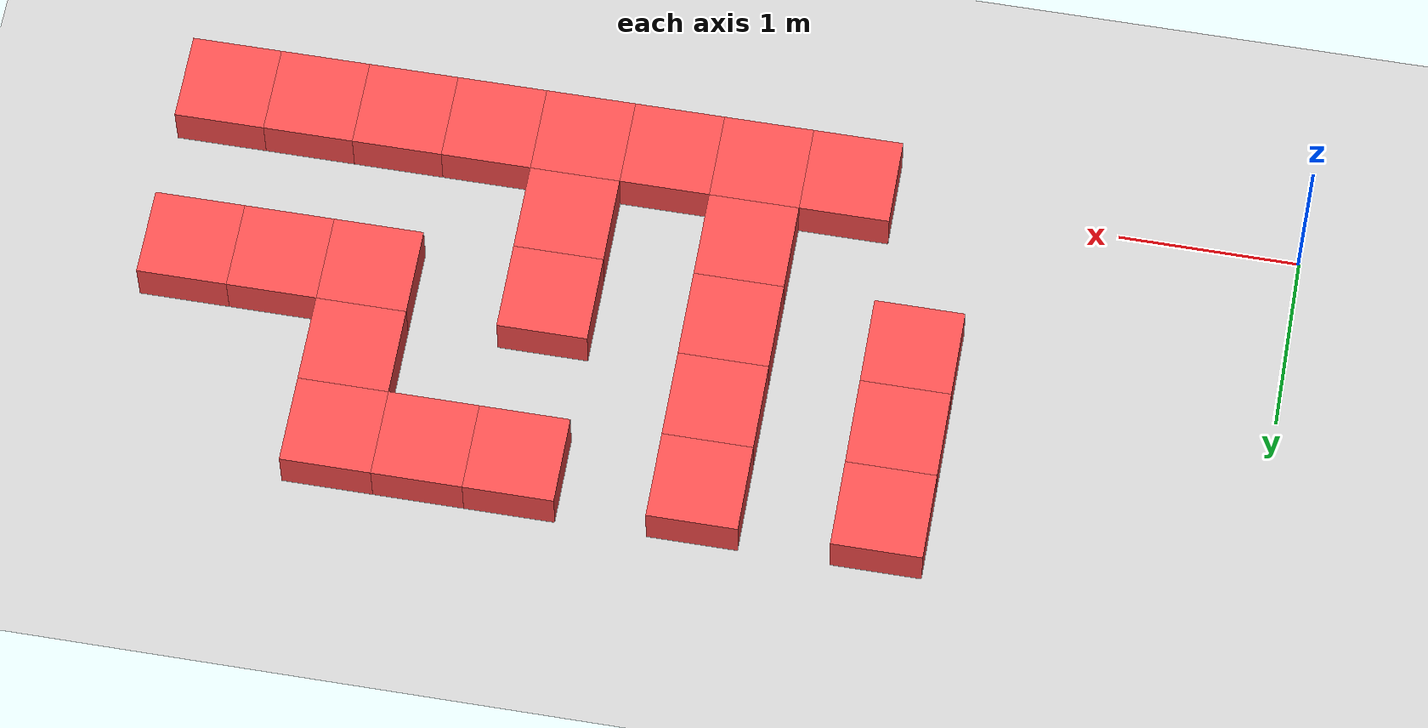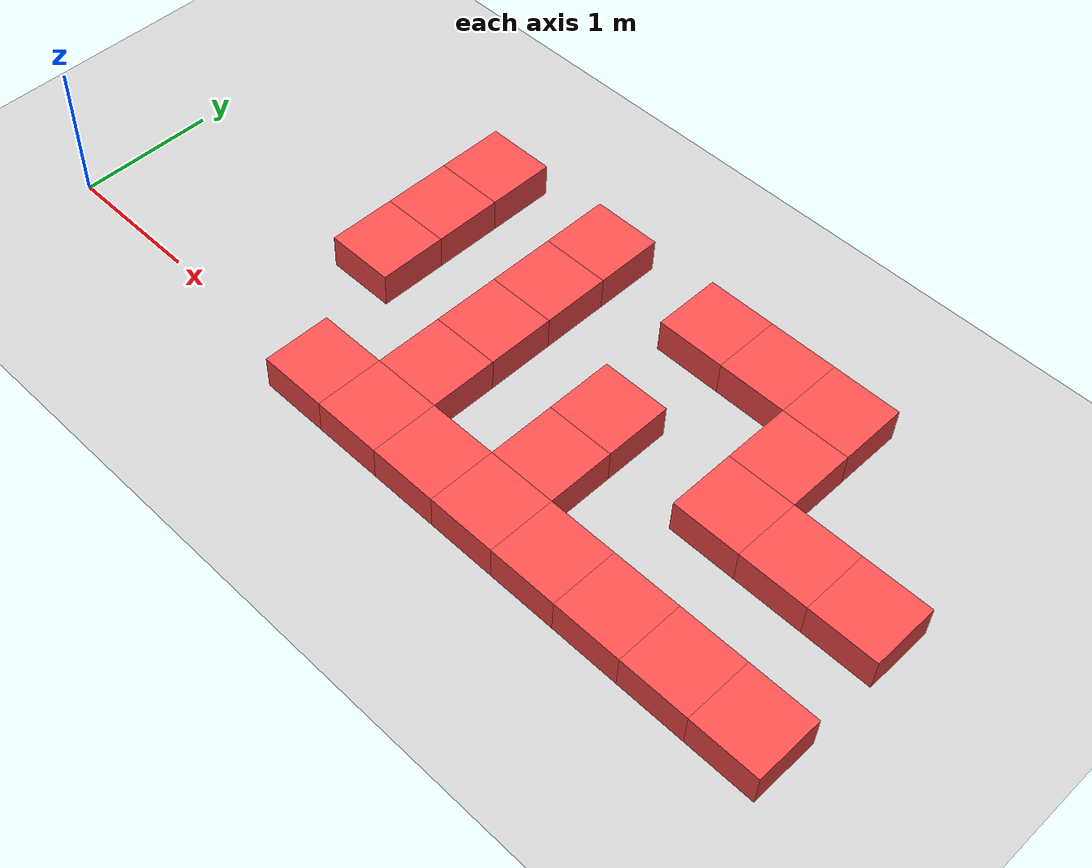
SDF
<sdf version="1.6">
 <world name="default">
  <model name="ground_plane">
   <static>1</static>
   <link name="link">
    <collision name="collision">
     <geometry><plane><normal>0 0 1</normal><size>100 100</size></plane></geometry>
     <surface><friction><ode><mu>100</mu><mu2>50</mu2></ode></friction></surface>
    </collision>
    <visual name="visual">
     <cast_shadows>0</cast_shadows>
     <geometry><plane><normal>0 0 1</normal><size>100 100</size></plane></geometry>
     <material>
      <script><uri>file://media/materials/scripts/gazebo.material</uri><name>Gazebo/Grey</name></script>
     </material>
    </visual>
   </link>
  </model>
  <model name="Box_Red_102">
   <link name="link_0">
    <inertial>
     <mass>1</mass>
     <inertia>
      <ixx>0.166667</ixx>
      <ixy>0</ixy>
      <ixz>0</ixz>
      <iyy>0.166667</iyy>
      <iyz>0</iyz>
      <izz>0.166667</izz>
     </inertia>
    </inertial>
    <visual name="visual">
     <geometry><box><size>0.5 0.5 0.5</size></box></geometry>
     <material>
      <lighting>1</lighting>
      <script><uri>file://media/materials/scripts/gazebo.material</uri><name>Gazebo/Grey</name></script>
      <ambient>1 0.3 0.3 1</ambient>
      <diffuse>0.7 0.7 0.7 1</diffuse>
      <specular>0.01 0.01 0.01 1</specular>
      <emissive>0 0 0 1</emissive>
      <shader type="vertex"><normal_map>__default__</normal_map></shader>
     </material>
    </visual>
    <collision name="collision">
     <geometry><box><size>0.5 0.5 0.5</size></box></geometry>
     <surface>
      <friction>
       <ode><mu>1</mu><mu2>1</mu2><fdir1>0 0 0</fdir1><slip1>0</slip1><slip2>0</slip2></ode>
       <torsional>
        <coefficient>1</coefficient>
        <patch_radius>0</patch_radius>
        <surface_radius>0</surface_radius>
        <use_patch_radius>1</use_patch_radius>
        <ode><slip>0</slip></ode>
       </torsional>
      </friction>
      <bounce><restitution_coefficient>0</restitution_coefficient><threshold>1e+06</threshold></bounce>
      <contact>
       <collide_without_contact>0</collide_without_contact>
       <collide_without_contact_bitmask>1</collide_without_contact_bitmask>
       <collide_bitmask>1</collide_bitmask>
       <ode>
        <soft_cfm>0</soft_cfm>
        <soft_erp>0.2</soft_erp>
        <kp>1e+13</kp>
        <kd>1</kd>
        <max_vel>0.01</max_vel>
        <min_depth>0</min_depth>
       </ode>
       <bullet>
        <split_impulse>1</split_impulse>
        <split_impulse_penetration_threshold>-0.01</split_impulse_penetration_threshold>
        <soft_cfm>0</soft_cfm>
        <soft_erp>0.2</soft_erp>
        <kp>1e+13</kp>
        <kd>1</kd>
       </bullet>
      </contact>
     </surface>
    </collision>
   </link>
   <static>0</static>
   <pose>2.000 1.000 0.000 0 0 0</pose>
  </model>
  <model name="Box_Red_103">
   <link name="link_0">
    <inertial>
     <mass>1</mass>
     <inertia>
      <ixx>0.166667</ixx>
      <ixy>0</ixy>
      <ixz>0</ixz>
      <iyy>0.166667</iyy>
      <iyz>0</iyz>
      <izz>0.166667</izz>
     </inertia>
    </inertial>
    <visual name="visual">
     <geometry><box><size>0.5 0.5 0.5</size></box></geometry>
     <material>
      <lighting>1</lighting>
      <script><uri>file://media/materials/scripts/gazebo.material</uri><name>Gazebo/Grey</name></script>
      <ambient>1 0.3 0.3 1</ambient>
      <diffuse>0.7 0.7 0.7 1</diffuse>
      <specular>0.01 0.01 0.01 1</specular>
      <emissive>0 0 0 1</emissive>
      <shader type="vertex"><normal_map>__default__</normal_map></shader>
     </material>
    </visual>
    <collision name="collision">
     <geometry><box><size>0.5 0.5 0.5</size></box></geometry>
     <surface>
      <friction>
       <ode><mu>1</mu><mu2>1</mu2><fdir1>0 0 0</fdir1><slip1>0</slip1><slip2>0</slip2></ode>
       <torsional>
        <coefficient>1</coefficient>
        <patch_radius>0</patch_radius>
        <surface_radius>0</surface_radius>
        <use_patch_radius>1</use_patch_radius>
        <ode><slip>0</slip></ode>
       </torsional>
      </friction>
      <bounce><restitution_coefficient>0</restitution_coefficient><threshold>1e+06</threshold></bounce>
      <contact>
       <collide_without_contact>0</collide_without_contact>
       <collide_without_contact_bitmask>1</collide_without_contact_bitmask>
       <collide_bitmask>1</collide_bitmask>
       <ode>
        <soft_cfm>0</soft_cfm>
        <soft_erp>0.2</soft_erp>
        <kp>1e+13</kp>
        <kd>1</kd>
        <max_vel>0.01</max_vel>
        <min_depth>0</min_depth>
       </ode>
       <bullet>
        <split_impulse>1</split_impulse>
        <split_impulse_penetration_threshold>-0.01</split_impulse_penetration_threshold>
        <soft_cfm>0</soft_cfm>
        <soft_erp>0.2</soft_erp>
        <kp>1e+13</kp>
        <kd>1</kd>
       </bullet>
      </contact>
     </surface>
    </collision>
   </link>
   <static>0</static>
   <pose>2.000 1.500 0.000 0 0 0</pose>
  </model>
  <model name="Box_Red_104">
   <link name="link_0">
    <inertial>
     <mass>1</mass>
     <inertia>
      <ixx>0.166667</ixx>
      <ixy>0</ixy>
      <ixz>0</ixz>
      <iyy>0.166667</iyy>
      <iyz>0</iyz>
      <izz>0.166667</izz>
     </inertia>
    </inertial>
    <visual name="visual">
     <geometry><box><size>0.5 0.5 0.5</size></box></geometry>
     <material>
      <lighting>1</lighting>
      <script><uri>file://media/materials/scripts/gazebo.material</uri><name>Gazebo/Grey</name></script>
      <ambient>1 0.3 0.3 1</ambient>
      <diffuse>0.7 0.7 0.7 1</diffuse>
      <specular>0.01 0.01 0.01 1</specular>
      <emissive>0 0 0 1</emissive>
      <shader type="vertex"><normal_map>__default__</normal_map></shader>
     </material>
    </visual>
    <collision name="collision">
     <geometry><box><size>0.5 0.5 0.5</size></box></geometry>
     <surface>
      <friction>
       <ode><mu>1</mu><mu2>1</mu2><fdir1>0 0 0</fdir1><slip1>0</slip1><slip2>0</slip2></ode>
       <torsional>
        <coefficient>1</coefficient>
        <patch_radius>0</patch_radius>
        <surface_radius>0</surface_radius>
        <use_patch_radius>1</use_patch_radius>
        <ode><slip>0</slip></ode>
       </torsional>
      </friction>
      <bounce><restitution_coefficient>0</restitution_coefficient><threshold>1e+06</threshold></bounce>
      <contact>
       <collide_without_contact>0</collide_without_contact>
       <collide_without_contact_bitmask>1</collide_without_contact_bitmask>
       <collide_bitmask>1</collide_bitmask>
       <ode>
        <soft_cfm>0</soft_cfm>
        <soft_erp>0.2</soft_erp>
        <kp>1e+13</kp>
        <kd>1</kd>
        <max_vel>0.01</max_vel>
        <min_depth>0</min_depth>
       </ode>
       <bullet>
        <split_impulse>1</split_impulse>
        <split_impulse_penetration_threshold>-0.01</split_impulse_penetration_threshold>
        <soft_cfm>0</soft_cfm>
        <soft_erp>0.2</soft_erp>
        <kp>1e+13</kp>
        <kd>1</kd>
       </bullet>
      </contact>
     </surface>
    </collision>
   </link>
   <static>0</static>
   <pose>2.000 2.000 0.000 0 0 0</pose>
  </model>
  <model name="Box_Red_125">
   <link name="link_0">
    <inertial>
     <mass>1</mass>
     <inertia>
      <ixx>0.166667</ixx>
      <ixy>0</ixy>
      <ixz>0</ixz>
      <iyy>0.166667</iyy>
      <iyz>0</iyz>
      <izz>0.166667</izz>
     </inertia>
    </inertial>
    <visual name="visual">
     <geometry><box><size>0.5 0.5 0.5</size></box></geometry>
     <material>
      <lighting>1</lighting>
      <script><uri>file://media/materials/scripts/gazebo.material</uri><name>Gazebo/Grey</name></script>
      <ambient>1 0.3 0.3 1</ambient>
      <diffuse>0.7 0.7 0.7 1</diffuse>
      <specular>0.01 0.01 0.01 1</specular>
      <emissive>0 0 0 1</emissive>
      <shader type="vertex"><normal_map>__default__</normal_map></shader>
     </material>
    </visual>
    <collision name="collision">
     <geometry><box><size>0.5 0.5 0.5</size></box></geometry>
     <surface>
      <friction>
       <ode><mu>1</mu><mu2>1</mu2><fdir1>0 0 0</fdir1><slip1>0</slip1><slip2>0</slip2></ode>
       <torsional>
        <coefficient>1</coefficient>
        <patch_radius>0</patch_radius>
        <surface_radius>0</surface_radius>
        <use_patch_radius>1</use_patch_radius>
        <ode><slip>0</slip></ode>
       </torsional>
      </friction>
      <bounce><restitution_coefficient>0</restitution_coefficient><threshold>1e+06</threshold></bounce>
      <contact>
       <collide_without_contact>0</collide_without_contact>
       <collide_without_contact_bitmask>1</collide_without_contact_bitmask>
       <collide_bitmask>1</collide_bitmask>
       <ode>
        <soft_cfm>0</soft_cfm>
        <soft_erp>0.2</soft_erp>
        <kp>1e+13</kp>
        <kd>1</kd>
        <max_vel>0.01</max_vel>
        <min_depth>0</min_depth>
       </ode>
       <bullet>
        <split_impulse>1</split_impulse>
        <split_impulse_penetration_threshold>-0.01</split_impulse_penetration_threshold>
        <soft_cfm>0</soft_cfm>
        <soft_erp>0.2</soft_erp>
        <kp>1e+13</kp>
        <kd>1</kd>
       </bullet>
      </contact>
     </surface>
    </collision>
   </link>
   <static>0</static>
   <pose>2.500 0.000 0.000 0 0 0</pose>
  </model>
  <model name="Box_Red_150">
   <link name="link_0">
    <inertial>
     <mass>1</mass>
     <inertia>
      <ixx>0.166667</ixx>
      <ixy>0</ixy>
      <ixz>0</ixz>
      <iyy>0.166667</iyy>
      <iyz>0</iyz>
      <izz>0.166667</izz>
     </inertia>
    </inertial>
    <visual name="visual">
     <geometry><box><size>0.5 0.5 0.5</size></box></geometry>
     <material>
      <lighting>1</lighting>
      <script><uri>file://media/materials/scripts/gazebo.material</uri><name>Gazebo/Grey</name></script>
      <ambient>1 0.3 0.3 1</ambient>
      <diffuse>0.7 0.7 0.7 1</diffuse>
      <specular>0.01 0.01 0.01 1</specular>
      <emissive>0 0 0 1</emissive>
      <shader type="vertex"><normal_map>__default__</normal_map></shader>
     </material>
    </visual>
    <collision name="collision">
     <geometry><box><size>0.5 0.5 0.5</size></box></geometry>
     <surface>
      <friction>
       <ode><mu>1</mu><mu2>1</mu2><fdir1>0 0 0</fdir1><slip1>0</slip1><slip2>0</slip2></ode>
       <torsional>
        <coefficient>1</coefficient>
        <patch_radius>0</patch_radius>
        <surface_radius>0</surface_radius>
        <use_patch_radius>1</use_patch_radius>
        <ode><slip>0</slip></ode>
       </torsional>
      </friction>
      <bounce><restitution_coefficient>0</restitution_coefficient><threshold>1e+06</threshold></bounce>
      <contact>
       <collide_without_contact>0</collide_without_contact>
       <collide_without_contact_bitmask>1</collide_without_contact_bitmask>
       <collide_bitmask>1</collide_bitmask>
       <ode>
        <soft_cfm>0</soft_cfm>
        <soft_erp>0.2</soft_erp>
        <kp>1e+13</kp>
        <kd>1</kd>
        <max_vel>0.01</max_vel>
        <min_depth>0</min_depth>
       </ode>
       <bullet>
        <split_impulse>1</split_impulse>
        <split_impulse_penetration_threshold>-0.01</split_impulse_penetration_threshold>
        <soft_cfm>0</soft_cfm>
        <soft_erp>0.2</soft_erp>
        <kp>1e+13</kp>
        <kd>1</kd>
       </bullet>
      </contact>
     </surface>
    </collision>
   </link>
   <static>0</static>
   <pose>3.000 0.000 0.000 0 0 0</pose>
  </model>
  <model name="Box_Red_151">
   <link name="link_0">
    <inertial>
     <mass>1</mass>
     <inertia>
      <ixx>0.166667</ixx>
      <ixy>0</ixy>
      <ixz>0</ixz>
      <iyy>0.166667</iyy>
      <iyz>0</iyz>
      <izz>0.166667</izz>
     </inertia>
    </inertial>
    <visual name="visual">
     <geometry><box><size>0.5 0.5 0.5</size></box></geometry>
     <material>
      <lighting>1</lighting>
      <script><uri>file://media/materials/scripts/gazebo.material</uri><name>Gazebo/Grey</name></script>
      <ambient>1 0.3 0.3 1</ambient>
      <diffuse>0.7 0.7 0.7 1</diffuse>
      <specular>0.01 0.01 0.01 1</specular>
      <emissive>0 0 0 1</emissive>
      <shader type="vertex"><normal_map>__default__</normal_map></shader>
     </material>
    </visual>
    <collision name="collision">
     <geometry><box><size>0.5 0.5 0.5</size></box></geometry>
     <surface>
      <friction>
       <ode><mu>1</mu><mu2>1</mu2><fdir1>0 0 0</fdir1><slip1>0</slip1><slip2>0</slip2></ode>
       <torsional>
        <coefficient>1</coefficient>
        <patch_radius>0</patch_radius>
        <surface_radius>0</surface_radius>
        <use_patch_radius>1</use_patch_radius>
        <ode><slip>0</slip></ode>
       </torsional>
      </friction>
      <bounce><restitution_coefficient>0</restitution_coefficient><threshold>1e+06</threshold></bounce>
      <contact>
       <collide_without_contact>0</collide_without_contact>
       <collide_without_contact_bitmask>1</collide_without_contact_bitmask>
       <collide_bitmask>1</collide_bitmask>
       <ode>
        <soft_cfm>0</soft_cfm>
        <soft_erp>0.2</soft_erp>
        <kp>1e+13</kp>
        <kd>1</kd>
        <max_vel>0.01</max_vel>
        <min_depth>0</min_depth>
       </ode>
       <bullet>
        <split_impulse>1</split_impulse>
        <split_impulse_penetration_threshold>-0.01</split_impulse_penetration_threshold>
        <soft_cfm>0</soft_cfm>
        <soft_erp>0.2</soft_erp>
        <kp>1e+13</kp>
        <kd>1</kd>
       </bullet>
      </contact>
     </surface>
    </collision>
   </link>
   <static>0</static>
   <pose>3.000 0.500 0.000 0 0 0</pose>
  </model>
  <model name="Box_Red_152">
   <link name="link_0">
    <inertial>
     <mass>1</mass>
     <inertia>
      <ixx>0.166667</ixx>
      <ixy>0</ixy>
      <ixz>0</ixz>
      <iyy>0.166667</iyy>
      <iyz>0</iyz>
      <izz>0.166667</izz>
     </inertia>
    </inertial>
    <visual name="visual">
     <geometry><box><size>0.5 0.5 0.5</size></box></geometry>
     <material>
      <lighting>1</lighting>
      <script><uri>file://media/materials/scripts/gazebo.material</uri><name>Gazebo/Grey</name></script>
      <ambient>1 0.3 0.3 1</ambient>
      <diffuse>0.7 0.7 0.7 1</diffuse>
      <specular>0.01 0.01 0.01 1</specular>
      <emissive>0 0 0 1</emissive>
      <shader type="vertex"><normal_map>__default__</normal_map></shader>
     </material>
    </visual>
    <collision name="collision">
     <geometry><box><size>0.5 0.5 0.5</size></box></geometry>
     <surface>
      <friction>
       <ode><mu>1</mu><mu2>1</mu2><fdir1>0 0 0</fdir1><slip1>0</slip1><slip2>0</slip2></ode>
       <torsional>
        <coefficient>1</coefficient>
        <patch_radius>0</patch_radius>
        <surface_radius>0</surface_radius>
        <use_patch_radius>1</use_patch_radius>
        <ode><slip>0</slip></ode>
       </torsional>
      </friction>
      <bounce><restitution_coefficient>0</restitution_coefficient><threshold>1e+06</threshold></bounce>
      <contact>
       <collide_without_contact>0</collide_without_contact>
       <collide_without_contact_bitmask>1</collide_without_contact_bitmask>
       <collide_bitmask>1</collide_bitmask>
       <ode>
        <soft_cfm>0</soft_cfm>
        <soft_erp>0.2</soft_erp>
        <kp>1e+13</kp>
        <kd>1</kd>
        <max_vel>0.01</max_vel>
        <min_depth>0</min_depth>
       </ode>
       <bullet>
        <split_impulse>1</split_impulse>
        <split_impulse_penetration_threshold>-0.01</split_impulse_penetration_threshold>
        <soft_cfm>0</soft_cfm>
        <soft_erp>0.2</soft_erp>
        <kp>1e+13</kp>
        <kd>1</kd>
       </bullet>
      </contact>
     </surface>
    </collision>
   </link>
   <static>0</static>
   <pose>3.000 1.000 0.000 0 0 0</pose>
  </model>
  <model name="Box_Red_153">
   <link name="link_0">
    <inertial>
     <mass>1</mass>
     <inertia>
      <ixx>0.166667</ixx>
      <ixy>0</ixy>
      <ixz>0</ixz>
      <iyy>0.166667</iyy>
      <iyz>0</iyz>
      <izz>0.166667</izz>
     </inertia>
    </inertial>
    <visual name="visual">
     <geometry><box><size>0.5 0.5 0.5</size></box></geometry>
     <material>
      <lighting>1</lighting>
      <script><uri>file://media/materials/scripts/gazebo.material</uri><name>Gazebo/Grey</name></script>
      <ambient>1 0.3 0.3 1</ambient>
      <diffuse>0.7 0.7 0.7 1</diffuse>
      <specular>0.01 0.01 0.01 1</specular>
      <emissive>0 0 0 1</emissive>
      <shader type="vertex"><normal_map>__default__</normal_map></shader>
     </material>
    </visual>
    <collision name="collision">
     <geometry><box><size>0.5 0.5 0.5</size></box></geometry>
     <surface>
      <friction>
       <ode><mu>1</mu><mu2>1</mu2><fdir1>0 0 0</fdir1><slip1>0</slip1><slip2>0</slip2></ode>
       <torsional>
        <coefficient>1</coefficient>
        <patch_radius>0</patch_radius>
        <surface_radius>0</surface_radius>
        <use_patch_radius>1</use_patch_radius>
        <ode><slip>0</slip></ode>
       </torsional>
      </friction>
      <bounce><restitution_coefficient>0</restitution_coefficient><threshold>1e+06</threshold></bounce>
      <contact>
       <collide_without_contact>0</collide_without_contact>
       <collide_without_contact_bitmask>1</collide_without_contact_bitmask>
       <collide_bitmask>1</collide_bitmask>
       <ode>
        <soft_cfm>0</soft_cfm>
        <soft_erp>0.2</soft_erp>
        <kp>1e+13</kp>
        <kd>1</kd>
        <max_vel>0.01</max_vel>
        <min_depth>0</min_depth>
       </ode>
       <bullet>
        <split_impulse>1</split_impulse>
        <split_impulse_penetration_threshold>-0.01</split_impulse_penetration_threshold>
        <soft_cfm>0</soft_cfm>
        <soft_erp>0.2</soft_erp>
        <kp>1e+13</kp>
        <kd>1</kd>
       </bullet>
      </contact>
     </surface>
    </collision>
   </link>
   <static>0</static>
   <pose>3.000 1.500 0.000 0 0 0</pose>
  </model>
  <model name="Box_Red_154">
   <link name="link_0">
    <inertial>
     <mass>1</mass>
     <inertia>
      <ixx>0.166667</ixx>
      <ixy>0</ixy>
      <ixz>0</ixz>
      <iyy>0.166667</iyy>
      <iyz>0</iyz>
      <izz>0.166667</izz>
     </inertia>
    </inertial>
    <visual name="visual">
     <geometry><box><size>0.5 0.5 0.5</size></box></geometry>
     <material>
      <lighting>1</lighting>
      <script><uri>file://media/materials/scripts/gazebo.material</uri><name>Gazebo/Grey</name></script>
      <ambient>1 0.3 0.3 1</ambient>
      <diffuse>0.7 0.7 0.7 1</diffuse>
      <specular>0.01 0.01 0.01 1</specular>
      <emissive>0 0 0 1</emissive>
      <shader type="vertex"><normal_map>__default__</normal_map></shader>
     </material>
    </visual>
    <collision name="collision">
     <geometry><box><size>0.5 0.5 0.5</size></box></geometry>
     <surface>
      <friction>
       <ode><mu>1</mu><mu2>1</mu2><fdir1>0 0 0</fdir1><slip1>0</slip1><slip2>0</slip2></ode>
       <torsional>
        <coefficient>1</coefficient>
        <patch_radius>0</patch_radius>
        <surface_radius>0</surface_radius>
        <use_patch_radius>1</use_patch_radius>
        <ode><slip>0</slip></ode>
       </torsional>
      </friction>
      <bounce><restitution_coefficient>0</restitution_coefficient><threshold>1e+06</threshold></bounce>
      <contact>
       <collide_without_contact>0</collide_without_contact>
       <collide_without_contact_bitmask>1</collide_without_contact_bitmask>
       <collide_bitmask>1</collide_bitmask>
       <ode>
        <soft_cfm>0</soft_cfm>
        <soft_erp>0.2</soft_erp>
        <kp>1e+13</kp>
        <kd>1</kd>
        <max_vel>0.01</max_vel>
        <min_depth>0</min_depth>
       </ode>
       <bullet>
        <split_impulse>1</split_impulse>
        <split_impulse_penetration_threshold>-0.01</split_impulse_penetration_threshold>
        <soft_cfm>0</soft_cfm>
        <soft_erp>0.2</soft_erp>
        <kp>1e+13</kp>
        <kd>1</kd>
       </bullet>
      </contact>
     </surface>
    </collision>
   </link>
   <static>0</static>
   <pose>3.000 2.000 0.000 0 0 0</pose>
  </model>
  <model name="Box_Red_175">
   <link name="link_0">
    <inertial>
     <mass>1</mass>
     <inertia>
      <ixx>0.166667</ixx>
      <ixy>0</ixy>
      <ixz>0</ixz>
      <iyy>0.166667</iyy>
      <iyz>0</iyz>
      <izz>0.166667</izz>
     </inertia>
    </inertial>
    <visual name="visual">
     <geometry><box><size>0.5 0.5 0.5</size></box></geometry>
     <material>
      <lighting>1</lighting>
      <script><uri>file://media/materials/scripts/gazebo.material</uri><name>Gazebo/Grey</name></script>
      <ambient>1 0.3 0.3 1</ambient>
      <diffuse>0.7 0.7 0.7 1</diffuse>
      <specular>0.01 0.01 0.01 1</specular>
      <emissive>0 0 0 1</emissive>
      <shader type="vertex"><normal_map>__default__</normal_map></shader>
     </material>
    </visual>
    <collision name="collision">
     <geometry><box><size>0.5 0.5 0.5</size></box></geometry>
     <surface>
      <friction>
       <ode><mu>1</mu><mu2>1</mu2><fdir1>0 0 0</fdir1><slip1>0</slip1><slip2>0</slip2></ode>
       <torsional>
        <coefficient>1</coefficient>
        <patch_radius>0</patch_radius>
        <surface_radius>0</surface_radius>
        <use_patch_radius>1</use_patch_radius>
        <ode><slip>0</slip></ode>
       </torsional>
      </friction>
      <bounce><restitution_coefficient>0</restitution_coefficient><threshold>1e+06</threshold></bounce>
      <contact>
       <collide_without_contact>0</collide_without_contact>
       <collide_without_contact_bitmask>1</collide_without_contact_bitmask>
       <collide_bitmask>1</collide_bitmask>
       <ode>
        <soft_cfm>0</soft_cfm>
        <soft_erp>0.2</soft_erp>
        <kp>1e+13</kp>
        <kd>1</kd>
        <max_vel>0.01</max_vel>
        <min_depth>0</min_depth>
       </ode>
       <bullet>
        <split_impulse>1</split_impulse>
        <split_impulse_penetration_threshold>-0.01</split_impulse_penetration_threshold>
        <soft_cfm>0</soft_cfm>
        <soft_erp>0.2</soft_erp>
        <kp>1e+13</kp>
        <kd>1</kd>
       </bullet>
      </contact>
     </surface>
    </collision>
   </link>
   <static>0</static>
   <pose>3.500 0.000 0.000 0 0 0</pose>
  </model>
  <model name="Box_Red_200">
   <link name="link_0">
    <inertial>
     <mass>1</mass>
     <inertia>
      <ixx>0.166667</ixx>
      <ixy>0</ixy>
      <ixz>0</ixz>
      <iyy>0.166667</iyy>
      <iyz>0</iyz>
      <izz>0.166667</izz>
     </inertia>
    </inertial>
    <visual name="visual">
     <geometry><box><size>0.5 0.5 0.5</size></box></geometry>
     <material>
      <lighting>1</lighting>
      <script><uri>file://media/materials/scripts/gazebo.material</uri><name>Gazebo/Grey</name></script>
      <ambient>1 0.3 0.3 1</ambient>
      <diffuse>0.7 0.7 0.7 1</diffuse>
      <specular>0.01 0.01 0.01 1</specular>
      <emissive>0 0 0 1</emissive>
      <shader type="vertex"><normal_map>__default__</normal_map></shader>
     </material>
    </visual>
    <collision name="collision">
     <geometry><box><size>0.5 0.5 0.5</size></box></geometry>
     <surface>
      <friction>
       <ode><mu>1</mu><mu2>1</mu2><fdir1>0 0 0</fdir1><slip1>0</slip1><slip2>0</slip2></ode>
       <torsional>
        <coefficient>1</coefficient>
        <patch_radius>0</patch_radius>
        <surface_radius>0</surface_radius>
        <use_patch_radius>1</use_patch_radius>
        <ode><slip>0</slip></ode>
       </torsional>
      </friction>
      <bounce><restitution_coefficient>0</restitution_coefficient><threshold>1e+06</threshold></bounce>
      <contact>
       <collide_without_contact>0</collide_without_contact>
       <collide_without_contact_bitmask>1</collide_without_contact_bitmask>
       <collide_bitmask>1</collide_bitmask>
       <ode>
        <soft_cfm>0</soft_cfm>
        <soft_erp>0.2</soft_erp>
        <kp>1e+13</kp>
        <kd>1</kd>
        <max_vel>0.01</max_vel>
        <min_depth>0</min_depth>
       </ode>
       <bullet>
        <split_impulse>1</split_impulse>
        <split_impulse_penetration_threshold>-0.01</split_impulse_penetration_threshold>
        <soft_cfm>0</soft_cfm>
        <soft_erp>0.2</soft_erp>
        <kp>1e+13</kp>
        <kd>1</kd>
       </bullet>
      </contact>
     </surface>
    </collision>
   </link>
   <static>0</static>
   <pose>4.000 0.000 0.000 0 0 0</pose>
  </model>
  <model name="Box_Red_201">
   <link name="link_0">
    <inertial>
     <mass>1</mass>
     <inertia>
      <ixx>0.166667</ixx>
      <ixy>0</ixy>
      <ixz>0</ixz>
      <iyy>0.166667</iyy>
      <iyz>0</iyz>
      <izz>0.166667</izz>
     </inertia>
    </inertial>
    <visual name="visual">
     <geometry><box><size>0.5 0.5 0.5</size></box></geometry>
     <material>
      <lighting>1</lighting>
      <script><uri>file://media/materials/scripts/gazebo.material</uri><name>Gazebo/Grey</name></script>
      <ambient>1 0.3 0.3 1</ambient>
      <diffuse>0.7 0.7 0.7 1</diffuse>
      <specular>0.01 0.01 0.01 1</specular>
      <emissive>0 0 0 1</emissive>
      <shader type="vertex"><normal_map>__default__</normal_map></shader>
     </material>
    </visual>
    <collision name="collision">
     <geometry><box><size>0.5 0.5 0.5</size></box></geometry>
     <surface>
      <friction>
       <ode><mu>1</mu><mu2>1</mu2><fdir1>0 0 0</fdir1><slip1>0</slip1><slip2>0</slip2></ode>
       <torsional>
        <coefficient>1</coefficient>
        <patch_radius>0</patch_radius>
        <surface_radius>0</surface_radius>
        <use_patch_radius>1</use_patch_radius>
        <ode><slip>0</slip></ode>
       </torsional>
      </friction>
      <bounce><restitution_coefficient>0</restitution_coefficient><threshold>1e+06</threshold></bounce>
      <contact>
       <collide_without_contact>0</collide_without_contact>
       <collide_without_contact_bitmask>1</collide_without_contact_bitmask>
       <collide_bitmask>1</collide_bitmask>
       <ode>
        <soft_cfm>0</soft_cfm>
        <soft_erp>0.2</soft_erp>
        <kp>1e+13</kp>
        <kd>1</kd>
        <max_vel>0.01</max_vel>
        <min_depth>0</min_depth>
       </ode>
       <bullet>
        <split_impulse>1</split_impulse>
        <split_impulse_penetration_threshold>-0.01</split_impulse_penetration_threshold>
        <soft_cfm>0</soft_cfm>
        <soft_erp>0.2</soft_erp>
        <kp>1e+13</kp>
        <kd>1</kd>
       </bullet>
      </contact>
     </surface>
    </collision>
   </link>
   <static>0</static>
   <pose>4.000 0.500 0.000 0 0 0</pose>
  </model>
  <model name="Box_Red_202">
   <link name="link_0">
    <inertial>
     <mass>1</mass>
     <inertia>
      <ixx>0.166667</ixx>
      <ixy>0</ixy>
      <ixz>0</ixz>
      <iyy>0.166667</iyy>
      <iyz>0</iyz>
      <izz>0.166667</izz>
     </inertia>
    </inertial>
    <visual name="visual">
     <geometry><box><size>0.5 0.5 0.5</size></box></geometry>
     <material>
      <lighting>1</lighting>
      <script><uri>file://media/materials/scripts/gazebo.material</uri><name>Gazebo/Grey</name></script>
      <ambient>1 0.3 0.3 1</ambient>
      <diffuse>0.7 0.7 0.7 1</diffuse>
      <specular>0.01 0.01 0.01 1</specular>
      <emissive>0 0 0 1</emissive>
      <shader type="vertex"><normal_map>__default__</normal_map></shader>
     </material>
    </visual>
    <collision name="collision">
     <geometry><box><size>0.5 0.5 0.5</size></box></geometry>
     <surface>
      <friction>
       <ode><mu>1</mu><mu2>1</mu2><fdir1>0 0 0</fdir1><slip1>0</slip1><slip2>0</slip2></ode>
       <torsional>
        <coefficient>1</coefficient>
        <patch_radius>0</patch_radius>
        <surface_radius>0</surface_radius>
        <use_patch_radius>1</use_patch_radius>
        <ode><slip>0</slip></ode>
       </torsional>
      </friction>
      <bounce><restitution_coefficient>0</restitution_coefficient><threshold>1e+06</threshold></bounce>
      <contact>
       <collide_without_contact>0</collide_without_contact>
       <collide_without_contact_bitmask>1</collide_without_contact_bitmask>
       <collide_bitmask>1</collide_bitmask>
       <ode>
        <soft_cfm>0</soft_cfm>
        <soft_erp>0.2</soft_erp>
        <kp>1e+13</kp>
        <kd>1</kd>
        <max_vel>0.01</max_vel>
        <min_depth>0</min_depth>
       </ode>
       <bullet>
        <split_impulse>1</split_impulse>
        <split_impulse_penetration_threshold>-0.01</split_impulse_penetration_threshold>
        <soft_cfm>0</soft_cfm>
        <soft_erp>0.2</soft_erp>
        <kp>1e+13</kp>
        <kd>1</kd>
       </bullet>
      </contact>
     </surface>
    </collision>
   </link>
   <static>0</static>
   <pose>4.000 1.000 0.000 0 0 0</pose>
  </model>
  <model name="Box_Red_204">
   <link name="link_0">
    <inertial>
     <mass>1</mass>
     <inertia>
      <ixx>0.166667</ixx>
      <ixy>0</ixy>
      <ixz>0</ixz>
      <iyy>0.166667</iyy>
      <iyz>0</iyz>
      <izz>0.166667</izz>
     </inertia>
    </inertial>
    <visual name="visual">
     <geometry><box><size>0.5 0.5 0.5</size></box></geometry>
     <material>
      <lighting>1</lighting>
      <script><uri>file://media/materials/scripts/gazebo.material</uri><name>Gazebo/Grey</name></script>
      <ambient>1 0.3 0.3 1</ambient>
      <diffuse>0.7 0.7 0.7 1</diffuse>
      <specular>0.01 0.01 0.01 1</specular>
      <emissive>0 0 0 1</emissive>
      <shader type="vertex"><normal_map>__default__</normal_map></shader>
     </material>
    </visual>
    <collision name="collision">
     <geometry><box><size>0.5 0.5 0.5</size></box></geometry>
     <surface>
      <friction>
       <ode><mu>1</mu><mu2>1</mu2><fdir1>0 0 0</fdir1><slip1>0</slip1><slip2>0</slip2></ode>
       <torsional>
        <coefficient>1</coefficient>
        <patch_radius>0</patch_radius>
        <surface_radius>0</surface_radius>
        <use_patch_radius>1</use_patch_radius>
        <ode><slip>0</slip></ode>
       </torsional>
      </friction>
      <bounce><restitution_coefficient>0</restitution_coefficient><threshold>1e+06</threshold></bounce>
      <contact>
       <collide_without_contact>0</collide_without_contact>
       <collide_without_contact_bitmask>1</collide_without_contact_bitmask>
       <collide_bitmask>1</collide_bitmask>
       <ode>
        <soft_cfm>0</soft_cfm>
        <soft_erp>0.2</soft_erp>
        <kp>1e+13</kp>
        <kd>1</kd>
        <max_vel>0.01</max_vel>
        <min_depth>0</min_depth>
       </ode>
       <bullet>
        <split_impulse>1</split_impulse>
        <split_impulse_penetration_threshold>-0.01</split_impulse_penetration_threshold>
        <soft_cfm>0</soft_cfm>
        <soft_erp>0.2</soft_erp>
        <kp>1e+13</kp>
        <kd>1</kd>
       </bullet>
      </contact>
     </surface>
    </collision>
   </link>
   <static>0</static>
   <pose>4.000 2.000 0.000 0 0 0</pose>
  </model>
  <model name="Box_Red_225">
   <link name="link_0">
    <inertial>
     <mass>1</mass>
     <inertia>
      <ixx>0.166667</ixx>
      <ixy>0</ixy>
      <ixz>0</ixz>
      <iyy>0.166667</iyy>
      <iyz>0</iyz>
      <izz>0.166667</izz>
     </inertia>
    </inertial>
    <visual name="visual">
     <geometry><box><size>0.5 0.5 0.5</size></box></geometry>
     <material>
      <lighting>1</lighting>
      <script><uri>file://media/materials/scripts/gazebo.material</uri><name>Gazebo/Grey</name></script>
      <ambient>1 0.3 0.3 1</ambient>
      <diffuse>0.7 0.7 0.7 1</diffuse>
      <specular>0.01 0.01 0.01 1</specular>
      <emissive>0 0 0 1</emissive>
      <shader type="vertex"><normal_map>__default__</normal_map></shader>
     </material>
    </visual>
    <collision name="collision">
     <geometry><box><size>0.5 0.5 0.5</size></box></geometry>
     <surface>
      <friction>
       <ode><mu>1</mu><mu2>1</mu2><fdir1>0 0 0</fdir1><slip1>0</slip1><slip2>0</slip2></ode>
       <torsional>
        <coefficient>1</coefficient>
        <patch_radius>0</patch_radius>
        <surface_radius>0</surface_radius>
        <use_patch_radius>1</use_patch_radius>
        <ode><slip>0</slip></ode>
       </torsional>
      </friction>
      <bounce><restitution_coefficient>0</restitution_coefficient><threshold>1e+06</threshold></bounce>
      <contact>
       <collide_without_contact>0</collide_without_contact>
       <collide_without_contact_bitmask>1</collide_without_contact_bitmask>
       <collide_bitmask>1</collide_bitmask>
       <ode>
        <soft_cfm>0</soft_cfm>
        <soft_erp>0.2</soft_erp>
        <kp>1e+13</kp>
        <kd>1</kd>
        <max_vel>0.01</max_vel>
        <min_depth>0</min_depth>
       </ode>
       <bullet>
        <split_impulse>1</split_impulse>
        <split_impulse_penetration_threshold>-0.01</split_impulse_penetration_threshold>
        <soft_cfm>0</soft_cfm>
        <soft_erp>0.2</soft_erp>
        <kp>1e+13</kp>
        <kd>1</kd>
       </bullet>
      </contact>
     </surface>
    </collision>
   </link>
   <static>0</static>
   <pose>4.500 0.000 0.000 0 0 0</pose>
  </model>
  <model name="Box_Red_229">
   <link name="link_0">
    <inertial>
     <mass>1</mass>
     <inertia>
      <ixx>0.166667</ixx>
      <ixy>0</ixy>
      <ixz>0</ixz>
      <iyy>0.166667</iyy>
      <iyz>0</iyz>
      <izz>0.166667</izz>
     </inertia>
    </inertial>
    <visual name="visual">
     <geometry><box><size>0.5 0.5 0.5</size></box></geometry>
     <material>
      <lighting>1</lighting>
      <script><uri>file://media/materials/scripts/gazebo.material</uri><name>Gazebo/Grey</name></script>
      <ambient>1 0.3 0.3 1</ambient>
      <diffuse>0.7 0.7 0.7 1</diffuse>
      <specular>0.01 0.01 0.01 1</specular>
      <emissive>0 0 0 1</emissive>
      <shader type="vertex"><normal_map>__default__</normal_map></shader>
     </material>
    </visual>
    <collision name="collision">
     <geometry><box><size>0.5 0.5 0.5</size></box></geometry>
     <surface>
      <friction>
       <ode><mu>1</mu><mu2>1</mu2><fdir1>0 0 0</fdir1><slip1>0</slip1><slip2>0</slip2></ode>
       <torsional>
        <coefficient>1</coefficient>
        <patch_radius>0</patch_radius>
        <surface_radius>0</surface_radius>
        <use_patch_radius>1</use_patch_radius>
        <ode><slip>0</slip></ode>
       </torsional>
      </friction>
      <bounce><restitution_coefficient>0</restitution_coefficient><threshold>1e+06</threshold></bounce>
      <contact>
       <collide_without_contact>0</collide_without_contact>
       <collide_without_contact_bitmask>1</collide_without_contact_bitmask>
       <collide_bitmask>1</collide_bitmask>
       <ode>
        <soft_cfm>0</soft_cfm>
        <soft_erp>0.2</soft_erp>
        <kp>1e+13</kp>
        <kd>1</kd>
        <max_vel>0.01</max_vel>
        <min_depth>0</min_depth>
       </ode>
       <bullet>
        <split_impulse>1</split_impulse>
        <split_impulse_penetration_threshold>-0.01</split_impulse_penetration_threshold>
        <soft_cfm>0</soft_cfm>
        <soft_erp>0.2</soft_erp>
        <kp>1e+13</kp>
        <kd>1</kd>
       </bullet>
      </contact>
     </surface>
    </collision>
   </link>
   <static>0</static>
   <pose>4.500 2.000 0.000 0 0 0</pose>
  </model>
  <model name="Box_Red_250">
   <link name="link_0">
    <inertial>
     <mass>1</mass>
     <inertia>
      <ixx>0.166667</ixx>
      <ixy>0</ixy>
      <ixz>0</ixz>
      <iyy>0.166667</iyy>
      <iyz>0</iyz>
      <izz>0.166667</izz>
     </inertia>
    </inertial>
    <visual name="visual">
     <geometry><box><size>0.5 0.5 0.5</size></box></geometry>
     <material>
      <lighting>1</lighting>
      <script><uri>file://media/materials/scripts/gazebo.material</uri><name>Gazebo/Grey</name></script>
      <ambient>1 0.3 0.3 1</ambient>
      <diffuse>0.7 0.7 0.7 1</diffuse>
      <specular>0.01 0.01 0.01 1</specular>
      <emissive>0 0 0 1</emissive>
      <shader type="vertex"><normal_map>__default__</normal_map></shader>
     </material>
    </visual>
    <collision name="collision">
     <geometry><box><size>0.5 0.5 0.5</size></box></geometry>
     <surface>
      <friction>
       <ode><mu>1</mu><mu2>1</mu2><fdir1>0 0 0</fdir1><slip1>0</slip1><slip2>0</slip2></ode>
       <torsional>
        <coefficient>1</coefficient>
        <patch_radius>0</patch_radius>
        <surface_radius>0</surface_radius>
        <use_patch_radius>1</use_patch_radius>
        <ode><slip>0</slip></ode>
       </torsional>
      </friction>
      <bounce><restitution_coefficient>0</restitution_coefficient><threshold>1e+06</threshold></bounce>
      <contact>
       <collide_without_contact>0</collide_without_contact>
       <collide_without_contact_bitmask>1</collide_without_contact_bitmask>
       <collide_bitmask>1</collide_bitmask>
       <ode>
        <soft_cfm>0</soft_cfm>
        <soft_erp>0.2</soft_erp>
        <kp>1e+13</kp>
        <kd>1</kd>
        <max_vel>0.01</max_vel>
        <min_depth>0</min_depth>
       </ode>
       <bullet>
        <split_impulse>1</split_impulse>
        <split_impulse_penetration_threshold>-0.01</split_impulse_penetration_threshold>
        <soft_cfm>0</soft_cfm>
        <soft_erp>0.2</soft_erp>
        <kp>1e+13</kp>
        <kd>1</kd>
       </bullet>
      </contact>
     </surface>
    </collision>
   </link>
   <static>0</static>
   <pose>5.000 0.000 0.000 0 0 0</pose>
  </model>
  <model name="Box_Red_252">
   <link name="link_0">
    <inertial>
     <mass>1</mass>
     <inertia>
      <ixx>0.166667</ixx>
      <ixy>0</ixy>
      <ixz>0</ixz>
      <iyy>0.166667</iyy>
      <iyz>0</iyz>
      <izz>0.166667</izz>
     </inertia>
    </inertial>
    <visual name="visual">
     <geometry><box><size>0.5 0.5 0.5</size></box></geometry>
     <material>
      <lighting>1</lighting>
      <script><uri>file://media/materials/scripts/gazebo.material</uri><name>Gazebo/Grey</name></script>
      <ambient>1 0.3 0.3 1</ambient>
      <diffuse>0.7 0.7 0.7 1</diffuse>
      <specular>0.01 0.01 0.01 1</specular>
      <emissive>0 0 0 1</emissive>
      <shader type="vertex"><normal_map>__default__</normal_map></shader>
     </material>
    </visual>
    <collision name="collision">
     <geometry><box><size>0.5 0.5 0.5</size></box></geometry>
     <surface>
      <friction>
       <ode><mu>1</mu><mu2>1</mu2><fdir1>0 0 0</fdir1><slip1>0</slip1><slip2>0</slip2></ode>
       <torsional>
        <coefficient>1</coefficient>
        <patch_radius>0</patch_radius>
        <surface_radius>0</surface_radius>
        <use_patch_radius>1</use_patch_radius>
        <ode><slip>0</slip></ode>
       </torsional>
      </friction>
      <bounce><restitution_coefficient>0</restitution_coefficient><threshold>1e+06</threshold></bounce>
      <contact>
       <collide_without_contact>0</collide_without_contact>
       <collide_without_contact_bitmask>1</collide_without_contact_bitmask>
       <collide_bitmask>1</collide_bitmask>
       <ode>
        <soft_cfm>0</soft_cfm>
        <soft_erp>0.2</soft_erp>
        <kp>1e+13</kp>
        <kd>1</kd>
        <max_vel>0.01</max_vel>
        <min_depth>0</min_depth>
       </ode>
       <bullet>
        <split_impulse>1</split_impulse>
        <split_impulse_penetration_threshold>-0.01</split_impulse_penetration_threshold>
        <soft_cfm>0</soft_cfm>
        <soft_erp>0.2</soft_erp>
        <kp>1e+13</kp>
        <kd>1</kd>
       </bullet>
      </contact>
     </surface>
    </collision>
   </link>
   <static>0</static>
   <pose>5.000 1.000 0.000 0 0 0</pose>
  </model>
  <model name="Box_Red_253">
   <link name="link_0">
    <inertial>
     <mass>1</mass>
     <inertia>
      <ixx>0.166667</ixx>
      <ixy>0</ixy>
      <ixz>0</ixz>
      <iyy>0.166667</iyy>
      <iyz>0</iyz>
      <izz>0.166667</izz>
     </inertia>
    </inertial>
    <visual name="visual">
     <geometry><box><size>0.5 0.5 0.5</size></box></geometry>
     <material>
      <lighting>1</lighting>
      <script><uri>file://media/materials/scripts/gazebo.material</uri><name>Gazebo/Grey</name></script>
      <ambient>1 0.3 0.3 1</ambient>
      <diffuse>0.7 0.7 0.7 1</diffuse>
      <specular>0.01 0.01 0.01 1</specular>
      <emissive>0 0 0 1</emissive>
      <shader type="vertex"><normal_map>__default__</normal_map></shader>
     </material>
    </visual>
    <collision name="collision">
     <geometry><box><size>0.5 0.5 0.5</size></box></geometry>
     <surface>
      <friction>
       <ode><mu>1</mu><mu2>1</mu2><fdir1>0 0 0</fdir1><slip1>0</slip1><slip2>0</slip2></ode>
       <torsional>
        <coefficient>1</coefficient>
        <patch_radius>0</patch_radius>
        <surface_radius>0</surface_radius>
        <use_patch_radius>1</use_patch_radius>
        <ode><slip>0</slip></ode>
       </torsional>
      </friction>
      <bounce><restitution_coefficient>0</restitution_coefficient><threshold>1e+06</threshold></bounce>
      <contact>
       <collide_without_contact>0</collide_without_contact>
       <collide_without_contact_bitmask>1</collide_without_contact_bitmask>
       <collide_bitmask>1</collide_bitmask>
       <ode>
        <soft_cfm>0</soft_cfm>
        <soft_erp>0.2</soft_erp>
        <kp>1e+13</kp>
        <kd>1</kd>
        <max_vel>0.01</max_vel>
        <min_depth>0</min_depth>
       </ode>
       <bullet>
        <split_impulse>1</split_impulse>
        <split_impulse_penetration_threshold>-0.01</split_impulse_penetration_threshold>
        <soft_cfm>0</soft_cfm>
        <soft_erp>0.2</soft_erp>
        <kp>1e+13</kp>
        <kd>1</kd>
       </bullet>
      </contact>
     </surface>
    </collision>
   </link>
   <static>0</static>
   <pose>5.000 1.500 0.000 0 0 0</pose>
  </model>
  <model name="Box_Red_254">
   <link name="link_0">
    <inertial>
     <mass>1</mass>
     <inertia>
      <ixx>0.166667</ixx>
      <ixy>0</ixy>
      <ixz>0</ixz>
      <iyy>0.166667</iyy>
      <iyz>0</iyz>
      <izz>0.166667</izz>
     </inertia>
    </inertial>
    <visual name="visual">
     <geometry><box><size>0.5 0.5 0.5</size></box></geometry>
     <material>
      <lighting>1</lighting>
      <script><uri>file://media/materials/scripts/gazebo.material</uri><name>Gazebo/Grey</name></script>
      <ambient>1 0.3 0.3 1</ambient>
      <diffuse>0.7 0.7 0.7 1</diffuse>
      <specular>0.01 0.01 0.01 1</specular>
      <emissive>0 0 0 1</emissive>
      <shader type="vertex"><normal_map>__default__</normal_map></shader>
     </material>
    </visual>
    <collision name="collision">
     <geometry><box><size>0.5 0.5 0.5</size></box></geometry>
     <surface>
      <friction>
       <ode><mu>1</mu><mu2>1</mu2><fdir1>0 0 0</fdir1><slip1>0</slip1><slip2>0</slip2></ode>
       <torsional>
        <coefficient>1</coefficient>
        <patch_radius>0</patch_radius>
        <surface_radius>0</surface_radius>
        <use_patch_radius>1</use_patch_radius>
        <ode><slip>0</slip></ode>
       </torsional>
      </friction>
      <bounce><restitution_coefficient>0</restitution_coefficient><threshold>1e+06</threshold></bounce>
      <contact>
       <collide_without_contact>0</collide_without_contact>
       <collide_without_contact_bitmask>1</collide_without_contact_bitmask>
       <collide_bitmask>1</collide_bitmask>
       <ode>
        <soft_cfm>0</soft_cfm>
        <soft_erp>0.2</soft_erp>
        <kp>1e+13</kp>
        <kd>1</kd>
        <max_vel>0.01</max_vel>
        <min_depth>0</min_depth>
       </ode>
       <bullet>
        <split_impulse>1</split_impulse>
        <split_impulse_penetration_threshold>-0.01</split_impulse_penetration_threshold>
        <soft_cfm>0</soft_cfm>
        <soft_erp>0.2</soft_erp>
        <kp>1e+13</kp>
        <kd>1</kd>
       </bullet>
      </contact>
     </surface>
    </collision>
   </link>
   <static>0</static>
   <pose>5.000 2.000 0.000 0 0 0</pose>
  </model>
  <model name="Box_Red_275">
   <link name="link_0">
    <inertial>
     <mass>1</mass>
     <inertia>
      <ixx>0.166667</ixx>
      <ixy>0</ixy>
      <ixz>0</ixz>
      <iyy>0.166667</iyy>
      <iyz>0</iyz>
      <izz>0.166667</izz>
     </inertia>
    </inertial>
    <visual name="visual">
     <geometry><box><size>0.5 0.5 0.5</size></box></geometry>
     <material>
      <lighting>1</lighting>
      <script><uri>file://media/materials/scripts/gazebo.material</uri><name>Gazebo/Grey</name></script>
      <ambient>1 0.3 0.3 1</ambient>
      <diffuse>0.7 0.7 0.7 1</diffuse>
      <specular>0.01 0.01 0.01 1</specular>
      <emissive>0 0 0 1</emissive>
      <shader type="vertex"><normal_map>__default__</normal_map></shader>
     </material>
    </visual>
    <collision name="collision">
     <geometry><box><size>0.5 0.5 0.5</size></box></geometry>
     <surface>
      <friction>
       <ode><mu>1</mu><mu2>1</mu2><fdir1>0 0 0</fdir1><slip1>0</slip1><slip2>0</slip2></ode>
       <torsional>
        <coefficient>1</coefficient>
        <patch_radius>0</patch_radius>
        <surface_radius>0</surface_radius>
        <use_patch_radius>1</use_patch_radius>
        <ode><slip>0</slip></ode>
       </torsional>
      </friction>
      <bounce><restitution_coefficient>0</restitution_coefficient><threshold>1e+06</threshold></bounce>
      <contact>
       <collide_without_contact>0</collide_without_contact>
       <collide_without_contact_bitmask>1</collide_without_contact_bitmask>
       <collide_bitmask>1</collide_bitmask>
       <ode>
        <soft_cfm>0</soft_cfm>
        <soft_erp>0.2</soft_erp>
        <kp>1e+13</kp>
        <kd>1</kd>
        <max_vel>0.01</max_vel>
        <min_depth>0</min_depth>
       </ode>
       <bullet>
        <split_impulse>1</split_impulse>
        <split_impulse_penetration_threshold>-0.01</split_impulse_penetration_threshold>
        <soft_cfm>0</soft_cfm>
        <soft_erp>0.2</soft_erp>
        <kp>1e+13</kp>
        <kd>1</kd>
       </bullet>
      </contact>
     </surface>
    </collision>
   </link>
   <static>0</static>
   <pose>5.500 0.000 0.000 0 0 0</pose>
  </model>
  <model name="Box_Red_277">
   <link name="link_0">
    <inertial>
     <mass>1</mass>
     <inertia>
      <ixx>0.166667</ixx>
      <ixy>0</ixy>
      <ixz>0</ixz>
      <iyy>0.166667</iyy>
      <iyz>0</iyz>
      <izz>0.166667</izz>
     </inertia>
    </inertial>
    <visual name="visual">
     <geometry><box><size>0.5 0.5 0.5</size></box></geometry>
     <material>
      <lighting>1</lighting>
      <script><uri>file://media/materials/scripts/gazebo.material</uri><name>Gazebo/Grey</name></script>
      <ambient>1 0.3 0.3 1</ambient>
      <diffuse>0.7 0.7 0.7 1</diffuse>
      <specular>0.01 0.01 0.01 1</specular>
      <emissive>0 0 0 1</emissive>
      <shader type="vertex"><normal_map>__default__</normal_map></shader>
     </material>
    </visual>
    <collision name="collision">
     <geometry><box><size>0.5 0.5 0.5</size></box></geometry>
     <surface>
      <friction>
       <ode><mu>1</mu><mu2>1</mu2><fdir1>0 0 0</fdir1><slip1>0</slip1><slip2>0</slip2></ode>
       <torsional>
        <coefficient>1</coefficient>
        <patch_radius>0</patch_radius>
        <surface_radius>0</surface_radius>
        <use_patch_radius>1</use_patch_radius>
        <ode><slip>0</slip></ode>
       </torsional>
      </friction>
      <bounce><restitution_coefficient>0</restitution_coefficient><threshold>1e+06</threshold></bounce>
      <contact>
       <collide_without_contact>0</collide_without_contact>
       <collide_without_contact_bitmask>1</collide_without_contact_bitmask>
       <collide_bitmask>1</collide_bitmask>
       <ode>
        <soft_cfm>0</soft_cfm>
        <soft_erp>0.2</soft_erp>
        <kp>1e+13</kp>
        <kd>1</kd>
        <max_vel>0.01</max_vel>
        <min_depth>0</min_depth>
       </ode>
       <bullet>
        <split_impulse>1</split_impulse>
        <split_impulse_penetration_threshold>-0.01</split_impulse_penetration_threshold>
        <soft_cfm>0</soft_cfm>
        <soft_erp>0.2</soft_erp>
        <kp>1e+13</kp>
        <kd>1</kd>
       </bullet>
      </contact>
     </surface>
    </collision>
   </link>
   <static>0</static>
   <pose>5.500 1.000 0.000 0 0 0</pose>
  </model>
  <model name="Box_Red_300">
   <link name="link_0">
    <inertial>
     <mass>1</mass>
     <inertia>
      <ixx>0.166667</ixx>
      <ixy>0</ixy>
      <ixz>0</ixz>
      <iyy>0.166667</iyy>
      <iyz>0</iyz>
      <izz>0.166667</izz>
     </inertia>
    </inertial>
    <visual name="visual">
     <geometry><box><size>0.5 0.5 0.5</size></box></geometry>
     <material>
      <lighting>1</lighting>
      <script><uri>file://media/materials/scripts/gazebo.material</uri><name>Gazebo/Grey</name></script>
      <ambient>1 0.3 0.3 1</ambient>
      <diffuse>0.7 0.7 0.7 1</diffuse>
      <specular>0.01 0.01 0.01 1</specular>
      <emissive>0 0 0 1</emissive>
      <shader type="vertex"><normal_map>__default__</normal_map></shader>
     </material>
    </visual>
    <collision name="collision">
     <geometry><box><size>0.5 0.5 0.5</size></box></geometry>
     <surface>
      <friction>
       <ode><mu>1</mu><mu2>1</mu2><fdir1>0 0 0</fdir1><slip1>0</slip1><slip2>0</slip2></ode>
       <torsional>
        <coefficient>1</coefficient>
        <patch_radius>0</patch_radius>
        <surface_radius>0</surface_radius>
        <use_patch_radius>1</use_patch_radius>
        <ode><slip>0</slip></ode>
       </torsional>
      </friction>
      <bounce><restitution_coefficient>0</restitution_coefficient><threshold>1e+06</threshold></bounce>
      <contact>
       <collide_without_contact>0</collide_without_contact>
       <collide_without_contact_bitmask>1</collide_without_contact_bitmask>
       <collide_bitmask>1</collide_bitmask>
       <ode>
        <soft_cfm>0</soft_cfm>
        <soft_erp>0.2</soft_erp>
        <kp>1e+13</kp>
        <kd>1</kd>
        <max_vel>0.01</max_vel>
        <min_depth>0</min_depth>
       </ode>
       <bullet>
        <split_impulse>1</split_impulse>
        <split_impulse_penetration_threshold>-0.01</split_impulse_penetration_threshold>
        <soft_cfm>0</soft_cfm>
        <soft_erp>0.2</soft_erp>
        <kp>1e+13</kp>
        <kd>1</kd>
       </bullet>
      </contact>
     </surface>
    </collision>
   </link>
   <static>0</static>
   <pose>6.000 0.000 0.000 0 0 0</pose>
  </model>
  <model name="Box_Red_302">
   <link name="link_0">
    <inertial>
     <mass>1</mass>
     <inertia>
      <ixx>0.166667</ixx>
      <ixy>0</ixy>
      <ixz>0</ixz>
      <iyy>0.166667</iyy>
      <iyz>0</iyz>
      <izz>0.166667</izz>
     </inertia>
    </inertial>
    <visual name="visual">
     <geometry><box><size>0.5 0.5 0.5</size></box></geometry>
     <material>
      <lighting>1</lighting>
      <script><uri>file://media/materials/scripts/gazebo.material</uri><name>Gazebo/Grey</name></script>
      <ambient>1 0.3 0.3 1</ambient>
      <diffuse>0.7 0.7 0.7 1</diffuse>
      <specular>0.01 0.01 0.01 1</specular>
      <emissive>0 0 0 1</emissive>
      <shader type="vertex"><normal_map>__default__</normal_map></shader>
     </material>
    </visual>
    <collision name="collision">
     <geometry><box><size>0.5 0.5 0.5</size></box></geometry>
     <surface>
      <friction>
       <ode><mu>1</mu><mu2>1</mu2><fdir1>0 0 0</fdir1><slip1>0</slip1><slip2>0</slip2></ode>
       <torsional>
        <coefficient>1</coefficient>
        <patch_radius>0</patch_radius>
        <surface_radius>0</surface_radius>
        <use_patch_radius>1</use_patch_radius>
        <ode><slip>0</slip></ode>
       </torsional>
      </friction>
      <bounce><restitution_coefficient>0</restitution_coefficient><threshold>1e+06</threshold></bounce>
      <contact>
       <collide_without_contact>0</collide_without_contact>
       <collide_without_contact_bitmask>1</collide_without_contact_bitmask>
       <collide_bitmask>1</collide_bitmask>
       <ode>
        <soft_cfm>0</soft_cfm>
        <soft_erp>0.2</soft_erp>
        <kp>1e+13</kp>
        <kd>1</kd>
        <max_vel>0.01</max_vel>
        <min_depth>0</min_depth>
       </ode>
       <bullet>
        <split_impulse>1</split_impulse>
        <split_impulse_penetration_threshold>-0.01</split_impulse_penetration_threshold>
        <soft_cfm>0</soft_cfm>
        <soft_erp>0.2</soft_erp>
        <kp>1e+13</kp>
        <kd>1</kd>
       </bullet>
      </contact>
     </surface>
    </collision>
   </link>
   <static>0</static>
   <pose>6.000 1.000 0.000 0 0 0</pose>
  </model>
 </world>
</sdf>
